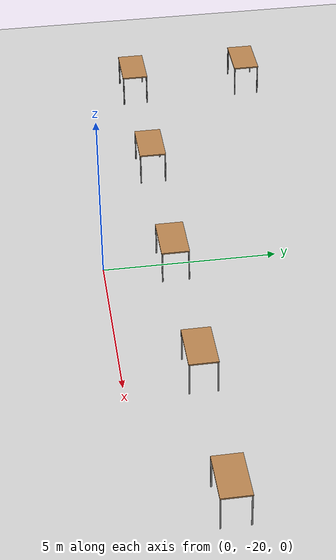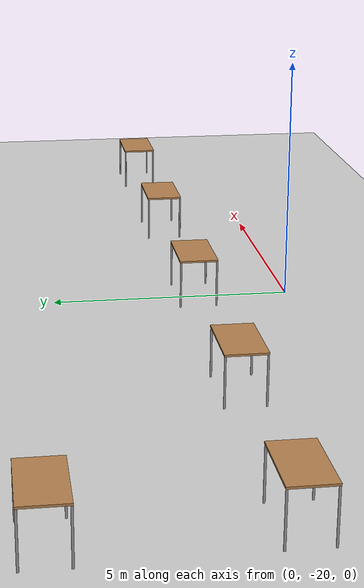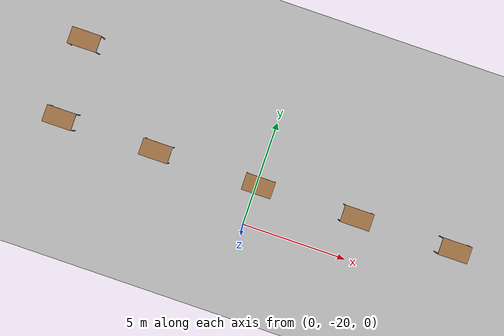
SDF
<sdf version="1.6">
 <world name="default">
  <model name="ground_plane">
   <static>1</static>
   <link name="link">
    <collision name="collision">
     <geometry><plane><normal>0 0 1</normal><size>100 100</size></plane></geometry>
     <surface><friction><ode><mu>100</mu><mu2>50</mu2></ode></friction></surface>
    </collision>
    <visual name="visual">
     <cast_shadows>0</cast_shadows>
     <geometry><plane><normal>0 0 1</normal><size>100 100</size></plane></geometry>
     <material>
      <script><uri>file://media/materials/scripts/gazebo.material</uri><name>Gazebo/Grey</name></script>
     </material>
    </visual>
   </link>
  </model>
  <model name="table">
   <static>0</static>
   <link name="link">
    <collision name="surface">
     <pose>0 0 1 0 -0 0</pose>
     <geometry><box><size>1.5 0.8 0.03</size></box></geometry>
     <surface><friction><ode><mu>0.6</mu><mu2>0.6</mu2></ode></friction></surface>
    </collision>
    <visual name="visual1">
     <pose>0 0 1 0 -0 0</pose>
     <geometry><box><size>1.4 0.8 0.04</size></box></geometry>
     <material>
      <script><uri>file://media/materials/scripts/gazebo.material</uri><name>Gazebo/Wood</name></script>
     </material>
    </visual>
    <collision name="front_left_leg">
     <pose>0.68 0.38 0.5 0 -0 0</pose>
     <geometry><cylinder><radius>0.02</radius><length>1</length></cylinder></geometry>
    </collision>
    <visual name="front_left_leg">
     <pose>0.68 0.38 0.5 0 -0 0</pose>
     <geometry><cylinder><radius>0.02</radius><length>1</length></cylinder></geometry>
     <material>
      <script><uri>file://media/materials/scripts/gazebo.material</uri><name>Gazebo/Grey</name></script>
     </material>
    </visual>
    <collision name="front_right_leg">
     <pose>0.68 -0.38 0.5 0 -0 0</pose>
     <geometry><cylinder><radius>0.02</radius><length>1</length></cylinder></geometry>
    </collision>
    <visual name="front_right_leg">
     <pose>0.68 -0.38 0.5 0 -0 0</pose>
     <geometry><cylinder><radius>0.02</radius><length>1</length></cylinder></geometry>
     <material>
      <script><uri>file://media/materials/scripts/gazebo.material</uri><name>Gazebo/Grey</name></script>
     </material>
    </visual>
    <collision name="back_right_leg">
     <pose>-0.68 -0.38 0.5 0 -0 0</pose>
     <geometry><cylinder><radius>0.02</radius><length>1</length></cylinder></geometry>
    </collision>
    <visual name="back_right_leg">
     <pose>-0.68 -0.38 0.5 0 -0 0</pose>
     <geometry><cylinder><radius>0.02</radius><length>1</length></cylinder></geometry>
     <material>
      <script><uri>file://media/materials/scripts/gazebo.material</uri><name>Gazebo/Grey</name></script>
     </material>
    </visual>
    <collision name="back_left_leg">
     <pose>-0.68 0.38 0.5 0 -0 0</pose>
     <geometry><cylinder><radius>0.02</radius><length>1</length></cylinder></geometry>
    </collision>
    <visual name="back_left_leg">
     <pose>-0.68 0.38 0.5 0 -0 0</pose>
     <geometry><cylinder><radius>0.02</radius><length>1</length></cylinder></geometry>
     <material>
      <script><uri>file://media/materials/scripts/gazebo.material</uri><name>Gazebo/Grey</name></script>
     </material>
    </visual>
    <inertial>
     <inertia><ixx>1</ixx><ixy>0</ixy><ixz>0</ixz><iyy>1</iyy><iyz>0</iyz><izz>1</izz></inertia>
     <mass>1</mass>
    </inertial>
   </link>
   <pose>-9.57196 -14.2734 -9e-06 0 -1e-06 0</pose>
  </model>
  <model name="table_clone_1">
   <static>0</static>
   <link name="link">
    <collision name="surface">
     <pose>0 0 1 0 -0 0</pose>
     <geometry><box><size>1.5 0.8 0.03</size></box></geometry>
     <surface><friction><ode><mu>0.6</mu><mu2>0.6</mu2></ode></friction></surface>
    </collision>
    <visual name="visual1">
     <pose>0 0 1 0 -0 0</pose>
     <geometry><box><size>1.4 0.8 0.04</size></box></geometry>
     <material>
      <script><uri>file://media/materials/scripts/gazebo.material</uri><name>Gazebo/Wood</name></script>
     </material>
    </visual>
    <collision name="front_left_leg">
     <pose>0.68 0.38 0.5 0 -0 0</pose>
     <geometry><cylinder><radius>0.02</radius><length>1</length></cylinder></geometry>
    </collision>
    <visual name="front_left_leg">
     <pose>0.68 0.38 0.5 0 -0 0</pose>
     <geometry><cylinder><radius>0.02</radius><length>1</length></cylinder></geometry>
     <material>
      <script><uri>file://media/materials/scripts/gazebo.material</uri><name>Gazebo/Grey</name></script>
     </material>
    </visual>
    <collision name="front_right_leg">
     <pose>0.68 -0.38 0.5 0 -0 0</pose>
     <geometry><cylinder><radius>0.02</radius><length>1</length></cylinder></geometry>
    </collision>
    <visual name="front_right_leg">
     <pose>0.68 -0.38 0.5 0 -0 0</pose>
     <geometry><cylinder><radius>0.02</radius><length>1</length></cylinder></geometry>
     <material>
      <script><uri>file://media/materials/scripts/gazebo.material</uri><name>Gazebo/Grey</name></script>
     </material>
    </visual>
    <collision name="back_right_leg">
     <pose>-0.68 -0.38 0.5 0 -0 0</pose>
     <geometry><cylinder><radius>0.02</radius><length>1</length></cylinder></geometry>
    </collision>
    <visual name="back_right_leg">
     <pose>-0.68 -0.38 0.5 0 -0 0</pose>
     <geometry><cylinder><radius>0.02</radius><length>1</length></cylinder></geometry>
     <material>
      <script><uri>file://media/materials/scripts/gazebo.material</uri><name>Gazebo/Grey</name></script>
     </material>
    </visual>
    <collision name="back_left_leg">
     <pose>-0.68 0.38 0.5 0 -0 0</pose>
     <geometry><cylinder><radius>0.02</radius><length>1</length></cylinder></geometry>
    </collision>
    <visual name="back_left_leg">
     <pose>-0.68 0.38 0.5 0 -0 0</pose>
     <geometry><cylinder><radius>0.02</radius><length>1</length></cylinder></geometry>
     <material>
      <script><uri>file://media/materials/scripts/gazebo.material</uri><name>Gazebo/Grey</name></script>
     </material>
    </visual>
    <inertial>
     <inertia><ixx>1</ixx><ixy>0</ixy><ixz>0</ixz><iyy>1</iyy><iyz>0</iyz><izz>1</izz></inertia>
     <mass>1</mass>
    </inertial>
   </link>
   <pose>-9.50655 -18.0093 -9e-06 0 -1e-06 0</pose>
  </model>
  <model name="table_clone_3">
   <static>0</static>
   <link name="link">
    <collision name="surface">
     <pose>0 0 1 0 -0 0</pose>
     <geometry><box><size>1.5 0.8 0.03</size></box></geometry>
     <surface><friction><ode><mu>0.6</mu><mu2>0.6</mu2></ode></friction></surface>
    </collision>
    <visual name="visual1">
     <pose>0 0 1 0 -0 0</pose>
     <geometry><box><size>1.4 0.8 0.04</size></box></geometry>
     <material>
      <script><uri>file://media/materials/scripts/gazebo.material</uri><name>Gazebo/Wood</name></script>
     </material>
    </visual>
    <collision name="front_left_leg">
     <pose>0.68 0.38 0.5 0 -0 0</pose>
     <geometry><cylinder><radius>0.02</radius><length>1</length></cylinder></geometry>
    </collision>
    <visual name="front_left_leg">
     <pose>0.68 0.38 0.5 0 -0 0</pose>
     <geometry><cylinder><radius>0.02</radius><length>1</length></cylinder></geometry>
     <material>
      <script><uri>file://media/materials/scripts/gazebo.material</uri><name>Gazebo/Grey</name></script>
     </material>
    </visual>
    <collision name="front_right_leg">
     <pose>0.68 -0.38 0.5 0 -0 0</pose>
     <geometry><cylinder><radius>0.02</radius><length>1</length></cylinder></geometry>
    </collision>
    <visual name="front_right_leg">
     <pose>0.68 -0.38 0.5 0 -0 0</pose>
     <geometry><cylinder><radius>0.02</radius><length>1</length></cylinder></geometry>
     <material>
      <script><uri>file://media/materials/scripts/gazebo.material</uri><name>Gazebo/Grey</name></script>
     </material>
    </visual>
    <collision name="back_right_leg">
     <pose>-0.68 -0.38 0.5 0 -0 0</pose>
     <geometry><cylinder><radius>0.02</radius><length>1</length></cylinder></geometry>
    </collision>
    <visual name="back_right_leg">
     <pose>-0.68 -0.38 0.5 0 -0 0</pose>
     <geometry><cylinder><radius>0.02</radius><length>1</length></cylinder></geometry>
     <material>
      <script><uri>file://media/materials/scripts/gazebo.material</uri><name>Gazebo/Grey</name></script>
     </material>
    </visual>
    <collision name="back_left_leg">
     <pose>-0.68 0.38 0.5 0 -0 0</pose>
     <geometry><cylinder><radius>0.02</radius><length>1</length></cylinder></geometry>
    </collision>
    <visual name="back_left_leg">
     <pose>-0.68 0.38 0.5 0 -0 0</pose>
     <geometry><cylinder><radius>0.02</radius><length>1</length></cylinder></geometry>
     <material>
      <script><uri>file://media/materials/scripts/gazebo.material</uri><name>Gazebo/Grey</name></script>
     </material>
    </visual>
    <inertial>
     <inertia><ixx>1</ixx><ixy>0</ixy><ixz>0</ixz><iyy>1</iyy><iyz>0</iyz><izz>1</izz></inertia>
     <mass>1</mass>
    </inertial>
   </link>
   <pose>-4.8651 -18.0156 -9e-06 0 -1e-06 0</pose>
  </model>
  <model name="table_clone_4">
   <static>0</static>
   <link name="link">
    <collision name="surface">
     <pose>0 0 1 0 -0 0</pose>
     <geometry><box><size>1.5 0.8 0.03</size></box></geometry>
     <surface><friction><ode><mu>0.6</mu><mu2>0.6</mu2></ode></friction></surface>
    </collision>
    <visual name="visual1">
     <pose>0 0 1 0 -0 0</pose>
     <geometry><box><size>1.4 0.8 0.04</size></box></geometry>
     <material>
      <script><uri>file://media/materials/scripts/gazebo.material</uri><name>Gazebo/Wood</name></script>
     </material>
    </visual>
    <collision name="front_left_leg">
     <pose>0.68 0.38 0.5 0 -0 0</pose>
     <geometry><cylinder><radius>0.02</radius><length>1</length></cylinder></geometry>
    </collision>
    <visual name="front_left_leg">
     <pose>0.68 0.38 0.5 0 -0 0</pose>
     <geometry><cylinder><radius>0.02</radius><length>1</length></cylinder></geometry>
     <material>
      <script><uri>file://media/materials/scripts/gazebo.material</uri><name>Gazebo/Grey</name></script>
     </material>
    </visual>
    <collision name="front_right_leg">
     <pose>0.68 -0.38 0.5 0 -0 0</pose>
     <geometry><cylinder><radius>0.02</radius><length>1</length></cylinder></geometry>
    </collision>
    <visual name="front_right_leg">
     <pose>0.68 -0.38 0.5 0 -0 0</pose>
     <geometry><cylinder><radius>0.02</radius><length>1</length></cylinder></geometry>
     <material>
      <script><uri>file://media/materials/scripts/gazebo.material</uri><name>Gazebo/Grey</name></script>
     </material>
    </visual>
    <collision name="back_right_leg">
     <pose>-0.68 -0.38 0.5 0 -0 0</pose>
     <geometry><cylinder><radius>0.02</radius><length>1</length></cylinder></geometry>
    </collision>
    <visual name="back_right_leg">
     <pose>-0.68 -0.38 0.5 0 -0 0</pose>
     <geometry><cylinder><radius>0.02</radius><length>1</length></cylinder></geometry>
     <material>
      <script><uri>file://media/materials/scripts/gazebo.material</uri><name>Gazebo/Grey</name></script>
     </material>
    </visual>
    <collision name="back_left_leg">
     <pose>-0.68 0.38 0.5 0 -0 0</pose>
     <geometry><cylinder><radius>0.02</radius><length>1</length></cylinder></geometry>
    </collision>
    <visual name="back_left_leg">
     <pose>-0.68 0.38 0.5 0 -0 0</pose>
     <geometry><cylinder><radius>0.02</radius><length>1</length></cylinder></geometry>
     <material>
      <script><uri>file://media/materials/scripts/gazebo.material</uri><name>Gazebo/Grey</name></script>
     </material>
    </visual>
    <inertial>
     <inertia><ixx>1</ixx><ixy>0</ixy><ixz>0</ixz><iyy>1</iyy><iyz>0</iyz><izz>1</izz></inertia>
     <mass>1</mass>
    </inertial>
   </link>
   <pose>0.087077 -18.0097 -9e-06 0 -1e-06 0</pose>
  </model>
  <model name="table_clone_7">
   <static>0</static>
   <link name="link">
    <collision name="surface">
     <pose>0 0 1 0 -0 0</pose>
     <geometry><box><size>1.5 0.8 0.03</size></box></geometry>
     <surface><friction><ode><mu>0.6</mu><mu2>0.6</mu2></ode></friction></surface>
    </collision>
    <visual name="visual1">
     <pose>0 0 1 0 -0 0</pose>
     <geometry><box><size>1.4 0.8 0.04</size></box></geometry>
     <material>
      <script><uri>file://media/materials/scripts/gazebo.material</uri><name>Gazebo/Wood</name></script>
     </material>
    </visual>
    <collision name="front_left_leg">
     <pose>0.68 0.38 0.5 0 -0 0</pose>
     <geometry><cylinder><radius>0.02</radius><length>1</length></cylinder></geometry>
    </collision>
    <visual name="front_left_leg">
     <pose>0.68 0.38 0.5 0 -0 0</pose>
     <geometry><cylinder><radius>0.02</radius><length>1</length></cylinder></geometry>
     <material>
      <script><uri>file://media/materials/scripts/gazebo.material</uri><name>Gazebo/Grey</name></script>
     </material>
    </visual>
    <collision name="front_right_leg">
     <pose>0.68 -0.38 0.5 0 -0 0</pose>
     <geometry><cylinder><radius>0.02</radius><length>1</length></cylinder></geometry>
    </collision>
    <visual name="front_right_leg">
     <pose>0.68 -0.38 0.5 0 -0 0</pose>
     <geometry><cylinder><radius>0.02</radius><length>1</length></cylinder></geometry>
     <material>
      <script><uri>file://media/materials/scripts/gazebo.material</uri><name>Gazebo/Grey</name></script>
     </material>
    </visual>
    <collision name="back_right_leg">
     <pose>-0.68 -0.38 0.5 0 -0 0</pose>
     <geometry><cylinder><radius>0.02</radius><length>1</length></cylinder></geometry>
    </collision>
    <visual name="back_right_leg">
     <pose>-0.68 -0.38 0.5 0 -0 0</pose>
     <geometry><cylinder><radius>0.02</radius><length>1</length></cylinder></geometry>
     <material>
      <script><uri>file://media/materials/scripts/gazebo.material</uri><name>Gazebo/Grey</name></script>
     </material>
    </visual>
    <collision name="back_left_leg">
     <pose>-0.68 0.38 0.5 0 -0 0</pose>
     <geometry><cylinder><radius>0.02</radius><length>1</length></cylinder></geometry>
    </collision>
    <visual name="back_left_leg">
     <pose>-0.68 0.38 0.5 0 -0 0</pose>
     <geometry><cylinder><radius>0.02</radius><length>1</length></cylinder></geometry>
     <material>
      <script><uri>file://media/materials/scripts/gazebo.material</uri><name>Gazebo/Grey</name></script>
     </material>
    </visual>
    <inertial>
     <inertia><ixx>1</ixx><ixy>0</ixy><ixz>0</ixz><iyy>1</iyy><iyz>0</iyz><izz>1</izz></inertia>
     <mass>1</mass>
    </inertial>
   </link>
   <pose>4.81531 -17.9469 -9e-06 0 -1e-06 0</pose>
  </model>
  <model name="table_clone_9">
   <static>0</static>
   <link name="link">
    <collision name="surface">
     <pose>0 0 1 0 -0 0</pose>
     <geometry><box><size>1.5 0.8 0.03</size></box></geometry>
     <surface><friction><ode><mu>0.6</mu><mu2>0.6</mu2></ode></friction></surface>
    </collision>
    <visual name="visual1">
     <pose>0 0 1 0 -0 0</pose>
     <geometry><box><size>1.4 0.8 0.04</size></box></geometry>
     <material>
      <script><uri>file://media/materials/scripts/gazebo.material</uri><name>Gazebo/Wood</name></script>
     </material>
    </visual>
    <collision name="front_left_leg">
     <pose>0.68 0.38 0.5 0 -0 0</pose>
     <geometry><cylinder><radius>0.02</radius><length>1</length></cylinder></geometry>
    </collision>
    <visual name="front_left_leg">
     <pose>0.68 0.38 0.5 0 -0 0</pose>
     <geometry><cylinder><radius>0.02</radius><length>1</length></cylinder></geometry>
     <material>
      <script><uri>file://media/materials/scripts/gazebo.material</uri><name>Gazebo/Grey</name></script>
     </material>
    </visual>
    <collision name="front_right_leg">
     <pose>0.68 -0.38 0.5 0 -0 0</pose>
     <geometry><cylinder><radius>0.02</radius><length>1</length></cylinder></geometry>
    </collision>
    <visual name="front_right_leg">
     <pose>0.68 -0.38 0.5 0 -0 0</pose>
     <geometry><cylinder><radius>0.02</radius><length>1</length></cylinder></geometry>
     <material>
      <script><uri>file://media/materials/scripts/gazebo.material</uri><name>Gazebo/Grey</name></script>
     </material>
    </visual>
    <collision name="back_right_leg">
     <pose>-0.68 -0.38 0.5 0 -0 0</pose>
     <geometry><cylinder><radius>0.02</radius><length>1</length></cylinder></geometry>
    </collision>
    <visual name="back_right_leg">
     <pose>-0.68 -0.38 0.5 0 -0 0</pose>
     <geometry><cylinder><radius>0.02</radius><length>1</length></cylinder></geometry>
     <material>
      <script><uri>file://media/materials/scripts/gazebo.material</uri><name>Gazebo/Grey</name></script>
     </material>
    </visual>
    <collision name="back_left_leg">
     <pose>-0.68 0.38 0.5 0 -0 0</pose>
     <geometry><cylinder><radius>0.02</radius><length>1</length></cylinder></geometry>
    </collision>
    <visual name="back_left_leg">
     <pose>-0.68 0.38 0.5 0 -0 0</pose>
     <geometry><cylinder><radius>0.02</radius><length>1</length></cylinder></geometry>
     <material>
      <script><uri>file://media/materials/scripts/gazebo.material</uri><name>Gazebo/Grey</name></script>
     </material>
    </visual>
    <inertial>
     <inertia><ixx>1</ixx><ixy>0</ixy><ixz>0</ixz><iyy>1</iyy><iyz>0</iyz><izz>1</izz></inertia>
     <mass>1</mass>
    </inertial>
   </link>
   <pose>9.5164 -17.9126 -9e-06 0 -1e-06 0</pose>
  </model>
 </world>
</sdf>
